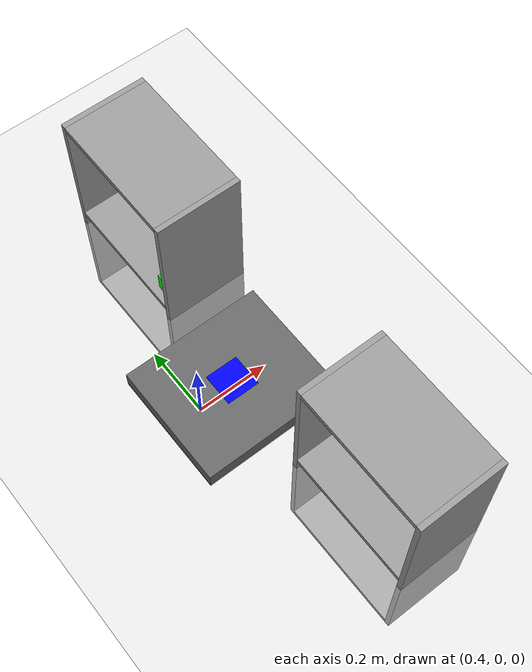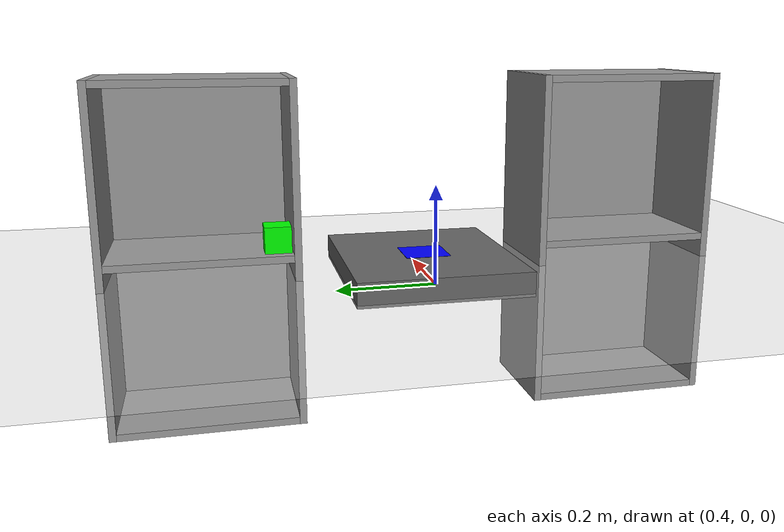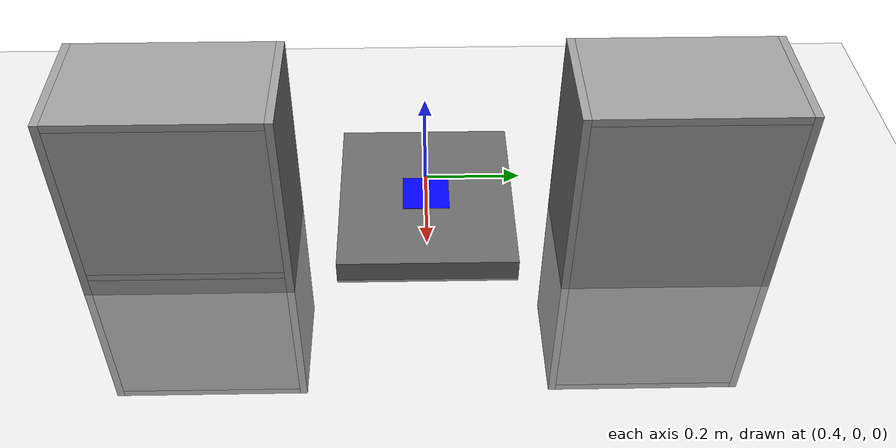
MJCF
<mujoco model="h1_2_mujoco_wide_shelves_scene">
  <compiler angle="radian" autolimits="true"/>
  <option timestep="0.002" gravity="0 0 -9.81"/>

  <worldbody>
    <light name="main_light" pos="0 0 2"/>

    <geom name="floor"
          type="plane"
          size="3 3 0.05"
          friction="1.0 0.01 0.001"
          rgba="0.8 0.8 0.8 1"/>

    <body name="cube" pos="0.54 0.30 0.08">
      <freejoint name="cube_freejoint"/>
      <geom name="cube_geom"
            type="box"
            size="0.0275 0.0275 0.0275"
            mass="0.05"
            friction="1.2 0.02 0.001"
            rgba="0 1 0 1"/>
    </body>
    -->

    <body name="aruco_mesa" pos="0.50 0.00 0.042">
      <geom name="aruco_marker_visual"
            type="box"
            size="0.0465 0.0465 0.001"
            rgba="0 0 1 1"
            contype="0"
            conaffinity="0"/>
    </body>

    <!-- Environment Table -->
    <body name="mesa_trabajo" pos="0.50 0.0 0.0174">
      <geom name="mesa_trabajo_geom"
            type="box"
            size="0.20 0.175 0.025"
            rgba="0.4 0.4 0.4 1"
            contype="0"
            conaffinity="0"
            friction="1.0 0.01 0.001"/>
    </body>

    <!-- Left Shelf (Wide Version) -->
    <body name="env_left_shelf" pos="0.61 0.455 0.045">
      <!-- Left side wall -->
      <geom name="env_left_shelf_side_left_geom" type="box" size="0.12 0.0075 0.36" pos="0.0 0.1925 0.0" rgba="0.6 0.6 0.6 1" contype="0" conaffinity="0"/>
      <!-- Right side wall -->
      <geom name="env_left_shelf_side_right_geom" type="box" size="0.12 0.0075 0.36" pos="0.0 -0.1925 0.0" rgba="0.6 0.6 0.6 1" contype="0" conaffinity="0"/>
      <!-- Top panel -->
      <geom name="env_left_shelf_top_geom" type="box" size="0.12 0.185 0.0075" pos="0.0 0.0 0.3525" rgba="0.6 0.6 0.6 1" contype="0" conaffinity="0"/>
      <!-- Bottom panel -->
      <geom name="env_left_shelf_bottom_geom" type="box" size="0.12 0.185 0.0075" pos="0.0 0.0 -0.3525" rgba="0.6 0.6 0.6 1" contype="0" conaffinity="0"/>
      <!-- Back panel (facing robot, back is at +X) -->
      <geom name="env_left_shelf_back_geom" type="box" size="0.0075 0.185 0.345" pos="0.1125 0.0 0.0" rgba="0.6 0.6 0.6 1" contype="0" conaffinity="0"/>
      <!-- Dividers (levels) -->
      <geom name="env_left_shelf_level_1_geom" type="box" size="0.12 0.185 0.0075" pos="0.0 0.0 0.0" rgba="0.6 0.6 0.6 1" contype="0" conaffinity="0"/>
    </body>

    <!-- Right Shelf (Wide Version) -->
    <body name="env_right_shelf" pos="0.61 -0.455 0.045">
      <!-- Left side wall -->
      <geom name="env_right_shelf_side_left_geom" type="box" size="0.12 0.0075 0.36" pos="0.0 0.1925 0.0" rgba="0.6 0.6 0.6 1" contype="0" conaffinity="0"/>
      <!-- Right side wall -->
      <geom name="env_right_shelf_side_right_geom" type="box" size="0.12 0.0075 0.36" pos="0.0 -0.1925 0.0" rgba="0.6 0.6 0.6 1" contype="0" conaffinity="0"/>
      <!-- Top panel -->
      <geom name="env_right_shelf_top_geom" type="box" size="0.12 0.185 0.0075" pos="0.0 0.0 0.3525" rgba="0.6 0.6 0.6 1" contype="0" conaffinity="0"/>
      <!-- Bottom panel -->
      <geom name="env_right_shelf_bottom_geom" type="box" size="0.12 0.185 0.0075" pos="0.0 0.0 -0.3525" rgba="0.6 0.6 0.6 1" contype="0" conaffinity="0"/>
      <!-- Back panel (facing robot, back is at +X) -->
      <geom name="env_right_shelf_back_geom" type="box" size="0.0075 0.185 0.345" pos="0.1125 0.0 0.0" rgba="0.6 0.6 0.6 1" contype="0" conaffinity="0"/>
      <!-- Dividers (levels) -->
      <geom name="env_right_shelf_level_1_geom" type="box" size="0.12 0.185 0.0075" pos="0.0 0.0 0.0" rgba="0.6 0.6 0.6 1" contype="0" conaffinity="0"/>
    </body>
  </worldbody>
</mujoco>
